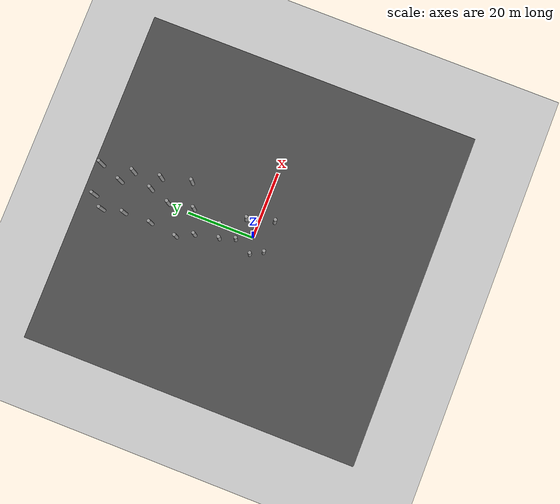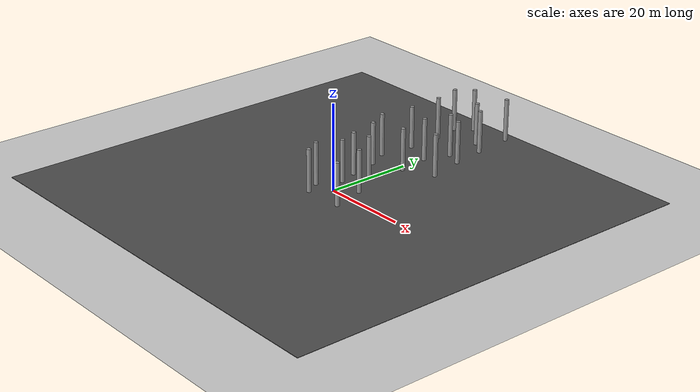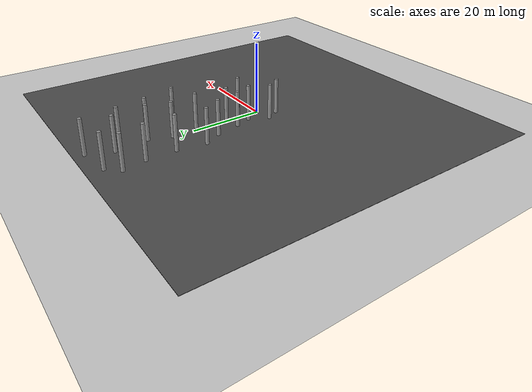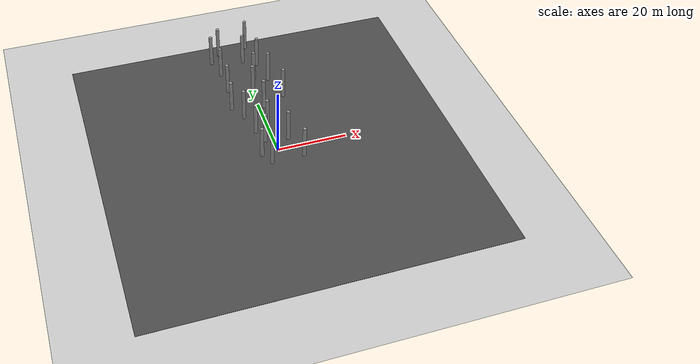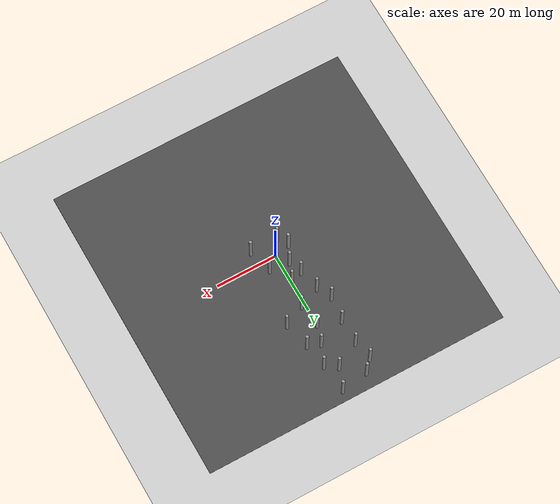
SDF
<sdf version="1.6">
 <world name="default">
  <model name="ground_plane">
   <static>1</static>
   <link name="link">
    <collision name="collision">
     <geometry><plane><normal>0 0 1</normal><size>100 100</size></plane></geometry>
     <surface><friction><ode><mu>100</mu><mu2>50</mu2></ode></friction></surface>
    </collision>
    <visual name="visual">
     <cast_shadows>0</cast_shadows>
     <geometry><plane><normal>0 0 1</normal><size>100 100</size></plane></geometry>
     <material>
      <script><uri>file://media/materials/scripts/gazebo.material</uri><name>Gazebo/Grey</name></script>
     </material>
    </visual>
   </link>
  </model>
  <model name="asphalt_plane">
   <static>1</static>
   <link name="link">
    <collision name="collision"><geometry><box><size>100 100 0.1</size></box></geometry></collision>
    <visual name="visual">
     <cast_shadows>0</cast_shadows>
     <geometry><box><size>100 100 0.1</size></box></geometry>
     <material>
      <script>
       <uri>model://asphalt_plane/materials/scripts</uri>
       <uri>model://asphalt_plane/materials/textures</uri>
       <name>vrc/asphalt</name>
      </script>
     </material>
    </visual>
   </link>
   <pose>0.078502 0.417861 0 0 -0 0</pose>
  </model>
  <model name="forest">
   <link name="link_clone_0">
    <pose>-4.40219 0.125929 0 0 -0 0</pose>
    <inertial>
     <mass>1000</mass>
     <inertia><ixx>0.145833</ixx><ixy>0</ixy><ixz>0</ixz><iyy>0.145833</iyy><iyz>0</iyz><izz>0.125</izz></inertia>
     <pose>0 0 5 0 -0 0</pose>
    </inertial>
    <visual name="visual">
     <geometry><cylinder><radius>0.5</radius><length>10</length></cylinder></geometry>
     <material>
      <script><name>Gazebo/Grey</name><uri>file://media/materials/scripts/gazebo.material</uri></script>
      <ambient>0.3 0.3 0.3 1</ambient>
      <diffuse>0.7 0.7 0.7 1</diffuse>
      <specular>0.01 0.01 0.01 1</specular>
      <emissive>0 0 0 1</emissive>
      <shader type="vertex"><normal_map>__default__</normal_map></shader>
     </material>
     <pose>0 0 5 0 -0 0</pose>
    </visual>
    <collision name="collision">
     <pose>0 0 5 0 -0 0</pose>
     <geometry><cylinder><radius>0.5</radius><length>10</length></cylinder></geometry>
     <surface>
      <friction>
       <ode><mu>1</mu><mu2>1</mu2><fdir1>0 0 0</fdir1><slip1>0</slip1><slip2>0</slip2></ode>
       <torsional>
        <coefficient>1</coefficient>
        <patch_radius>0</patch_radius>
        <surface_radius>0</surface_radius>
        <use_patch_radius>1</use_patch_radius>
        <ode><slip>0</slip></ode>
       </torsional>
      </friction>
      <bounce><restitution_coefficient>0</restitution_coefficient><threshold>1e+06</threshold></bounce>
      <contact>
       <collide_without_contact>0</collide_without_contact>
       <collide_without_contact_bitmask>1</collide_without_contact_bitmask>
       <collide_bitmask>1</collide_bitmask>
       <ode>
        <soft_cfm>0</soft_cfm>
        <soft_erp>0.2</soft_erp>
        <kp>1e+13</kp>
        <kd>1</kd>
        <max_vel>0.01</max_vel>
        <min_depth>0</min_depth>
       </ode>
       <bullet>
        <split_impulse>1</split_impulse>
        <split_impulse_penetration_threshold>-0.01</split_impulse_penetration_threshold>
        <soft_cfm>0</soft_cfm>
        <soft_erp>0.2</soft_erp>
        <kp>1e+13</kp>
        <kd>1</kd>
       </bullet>
      </contact>
     </surface>
    </collision>
   </link>
   <link name="link_clone_13">
    <pose>-3.35264 9.78406 0 0 -0 0</pose>
    <inertial>
     <mass>1000</mass>
     <inertia><ixx>0.145833</ixx><ixy>0</ixy><ixz>0</ixz><iyy>0.145833</iyy><iyz>0</iyz><izz>0.125</izz></inertia>
     <pose>0 0 5 0 -0 0</pose>
    </inertial>
    <visual name="visual">
     <geometry><cylinder><radius>0.5</radius><length>10</length></cylinder></geometry>
     <material>
      <script><name>Gazebo/Grey</name><uri>file://media/materials/scripts/gazebo.material</uri></script>
      <ambient>0.3 0.3 0.3 1</ambient>
      <diffuse>0.7 0.7 0.7 1</diffuse>
      <specular>0.01 0.01 0.01 1</specular>
      <emissive>0 0 0 1</emissive>
      <shader type="vertex"><normal_map>__default__</normal_map></shader>
     </material>
     <pose>0 0 5 0 -0 0</pose>
    </visual>
    <collision name="collision">
     <pose>0 0 5 0 -0 0</pose>
     <geometry><cylinder><radius>0.5</radius><length>10</length></cylinder></geometry>
     <surface>
      <friction>
       <ode><mu>1</mu><mu2>1</mu2><fdir1>0 0 0</fdir1><slip1>0</slip1><slip2>0</slip2></ode>
       <torsional>
        <coefficient>1</coefficient>
        <patch_radius>0</patch_radius>
        <surface_radius>0</surface_radius>
        <use_patch_radius>1</use_patch_radius>
        <ode><slip>0</slip></ode>
       </torsional>
      </friction>
      <bounce><restitution_coefficient>0</restitution_coefficient><threshold>1e+06</threshold></bounce>
      <contact>
       <collide_without_contact>0</collide_without_contact>
       <collide_without_contact_bitmask>1</collide_without_contact_bitmask>
       <collide_bitmask>1</collide_bitmask>
       <ode>
        <soft_cfm>0</soft_cfm>
        <soft_erp>0.2</soft_erp>
        <kp>1e+13</kp>
        <kd>1</kd>
        <max_vel>0.01</max_vel>
        <min_depth>0</min_depth>
       </ode>
       <bullet>
        <split_impulse>1</split_impulse>
        <split_impulse_penetration_threshold>-0.01</split_impulse_penetration_threshold>
        <soft_cfm>0</soft_cfm>
        <soft_erp>0.2</soft_erp>
        <kp>1e+13</kp>
        <kd>1</kd>
       </bullet>
      </contact>
     </surface>
    </collision>
   </link>
   <link name="link_clone_13_clone">
    <pose>-7.29742 21.3612 0 0 -0 0</pose>
    <inertial>
     <mass>1000</mass>
     <inertia><ixx>0.145833</ixx><ixy>0</ixy><ixz>0</ixz><iyy>0.145833</iyy><iyz>0</iyz><izz>0.125</izz></inertia>
     <pose>0 0 5 0 -0 0</pose>
    </inertial>
    <visual name="visual">
     <geometry><cylinder><radius>0.5</radius><length>10</length></cylinder></geometry>
     <material>
      <script><name>Gazebo/Grey</name><uri>file://media/materials/scripts/gazebo.material</uri></script>
      <ambient>0.3 0.3 0.3 1</ambient>
      <diffuse>0.7 0.7 0.7 1</diffuse>
      <specular>0.01 0.01 0.01 1</specular>
      <emissive>0 0 0 1</emissive>
      <shader type="vertex"><normal_map>__default__</normal_map></shader>
     </material>
     <pose>0 0 5 0 -0 0</pose>
    </visual>
    <collision name="collision">
     <pose>0 0 5 0 -0 0</pose>
     <geometry><cylinder><radius>0.5</radius><length>10</length></cylinder></geometry>
     <surface>
      <friction>
       <ode><mu>1</mu><mu2>1</mu2><fdir1>0 0 0</fdir1><slip1>0</slip1><slip2>0</slip2></ode>
       <torsional>
        <coefficient>1</coefficient>
        <patch_radius>0</patch_radius>
        <surface_radius>0</surface_radius>
        <use_patch_radius>1</use_patch_radius>
        <ode><slip>0</slip></ode>
       </torsional>
      </friction>
      <bounce><restitution_coefficient>0</restitution_coefficient><threshold>1e+06</threshold></bounce>
      <contact>
       <collide_without_contact>0</collide_without_contact>
       <collide_without_contact_bitmask>1</collide_without_contact_bitmask>
       <collide_bitmask>1</collide_bitmask>
       <ode>
        <soft_cfm>0</soft_cfm>
        <soft_erp>0.2</soft_erp>
        <kp>1e+13</kp>
        <kd>1</kd>
        <max_vel>0.01</max_vel>
        <min_depth>0</min_depth>
       </ode>
       <bullet>
        <split_impulse>1</split_impulse>
        <split_impulse_penetration_threshold>-0.01</split_impulse_penetration_threshold>
        <soft_cfm>0</soft_cfm>
        <soft_erp>0.2</soft_erp>
        <kp>1e+13</kp>
        <kd>1</kd>
       </bullet>
      </contact>
     </surface>
    </collision>
   </link>
   <link name="link_clone_13_clone_0">
    <pose>-4.89188 16.6488 0 0 -0 0</pose>
    <inertial>
     <mass>1000</mass>
     <inertia><ixx>0.145833</ixx><ixy>0</ixy><ixz>0</ixz><iyy>0.145833</iyy><iyz>0</iyz><izz>0.125</izz></inertia>
     <pose>0 0 5 0 -0 0</pose>
    </inertial>
    <visual name="visual">
     <geometry><cylinder><radius>0.5</radius><length>10</length></cylinder></geometry>
     <material>
      <script><name>Gazebo/Grey</name><uri>file://media/materials/scripts/gazebo.material</uri></script>
      <ambient>0.3 0.3 0.3 1</ambient>
      <diffuse>0.7 0.7 0.7 1</diffuse>
      <specular>0.01 0.01 0.01 1</specular>
      <emissive>0 0 0 1</emissive>
      <shader type="vertex"><normal_map>__default__</normal_map></shader>
     </material>
     <pose>0 0 5 0 -0 0</pose>
    </visual>
    <collision name="collision">
     <pose>0 0 5 0 -0 0</pose>
     <geometry><cylinder><radius>0.5</radius><length>10</length></cylinder></geometry>
     <surface>
      <friction>
       <ode><mu>1</mu><mu2>1</mu2><fdir1>0 0 0</fdir1><slip1>0</slip1><slip2>0</slip2></ode>
       <torsional>
        <coefficient>1</coefficient>
        <patch_radius>0</patch_radius>
        <surface_radius>0</surface_radius>
        <use_patch_radius>1</use_patch_radius>
        <ode><slip>0</slip></ode>
       </torsional>
      </friction>
      <bounce><restitution_coefficient>0</restitution_coefficient><threshold>1e+06</threshold></bounce>
      <contact>
       <collide_without_contact>0</collide_without_contact>
       <collide_without_contact_bitmask>1</collide_without_contact_bitmask>
       <collide_bitmask>1</collide_bitmask>
       <ode>
        <soft_cfm>0</soft_cfm>
        <soft_erp>0.2</soft_erp>
        <kp>1e+13</kp>
        <kd>1</kd>
        <max_vel>0.01</max_vel>
        <min_depth>0</min_depth>
       </ode>
       <bullet>
        <split_impulse>1</split_impulse>
        <split_impulse_penetration_threshold>-0.01</split_impulse_penetration_threshold>
        <soft_cfm>0</soft_cfm>
        <soft_erp>0.2</soft_erp>
        <kp>1e+13</kp>
        <kd>1</kd>
       </bullet>
      </contact>
     </surface>
    </collision>
   </link>
   <link name="link_clone_13_clone_142">
    <pose>6.72388 -3.19567 -0 0 -0 0</pose>
    <inertial>
     <mass>1000</mass>
     <inertia><ixx>0.145833</ixx><ixy>0</ixy><ixz>0</ixz><iyy>0.145833</iyy><iyz>0</iyz><izz>0.125</izz></inertia>
     <pose>0 0 5 0 -0 0</pose>
    </inertial>
    <visual name="visual">
     <geometry><cylinder><radius>0.5</radius><length>10</length></cylinder></geometry>
     <material>
      <script><name>Gazebo/Grey</name><uri>file://media/materials/scripts/gazebo.material</uri></script>
      <ambient>0.3 0.3 0.3 1</ambient>
      <diffuse>0.7 0.7 0.7 1</diffuse>
      <specular>0.01 0.01 0.01 1</specular>
      <emissive>0 0 0 1</emissive>
      <shader type="vertex"><normal_map>__default__</normal_map></shader>
     </material>
     <pose>0 0 5 0 -0 0</pose>
    </visual>
    <collision name="collision">
     <pose>0 0 5 0 -0 0</pose>
     <geometry><cylinder><radius>0.5</radius><length>10</length></cylinder></geometry>
     <surface>
      <friction>
       <ode><mu>1</mu><mu2>1</mu2><fdir1>0 0 0</fdir1><slip1>0</slip1><slip2>0</slip2></ode>
       <torsional>
        <coefficient>1</coefficient>
        <patch_radius>0</patch_radius>
        <surface_radius>0</surface_radius>
        <use_patch_radius>1</use_patch_radius>
        <ode><slip>0</slip></ode>
       </torsional>
      </friction>
      <bounce><restitution_coefficient>0</restitution_coefficient><threshold>1e+06</threshold></bounce>
      <contact>
       <collide_without_contact>0</collide_without_contact>
       <collide_without_contact_bitmask>1</collide_without_contact_bitmask>
       <collide_bitmask>1</collide_bitmask>
       <ode>
        <soft_cfm>0</soft_cfm>
        <soft_erp>0.2</soft_erp>
        <kp>1e+13</kp>
        <kd>1</kd>
        <max_vel>0.01</max_vel>
        <min_depth>0</min_depth>
       </ode>
       <bullet>
        <split_impulse>1</split_impulse>
        <split_impulse_penetration_threshold>-0.01</split_impulse_penetration_threshold>
        <soft_cfm>0</soft_cfm>
        <soft_erp>0.2</soft_erp>
        <kp>1e+13</kp>
        <kd>1</kd>
       </bullet>
      </contact>
     </surface>
    </collision>
   </link>
   <link name="link_clone_13_clone_144">
    <pose>4.57845 4.62908 -0 0 -0 0</pose>
    <inertial>
     <mass>1000</mass>
     <inertia><ixx>0.145833</ixx><ixy>0</ixy><ixz>0</ixz><iyy>0.145833</iyy><iyz>0</iyz><izz>0.125</izz></inertia>
     <pose>0 0 5 0 -0 0</pose>
    </inertial>
    <visual name="visual">
     <geometry><cylinder><radius>0.5</radius><length>10</length></cylinder></geometry>
     <material>
      <script><name>Gazebo/Grey</name><uri>file://media/materials/scripts/gazebo.material</uri></script>
      <ambient>0.3 0.3 0.3 1</ambient>
      <diffuse>0.7 0.7 0.7 1</diffuse>
      <specular>0.01 0.01 0.01 1</specular>
      <emissive>0 0 0 1</emissive>
      <shader type="vertex"><normal_map>__default__</normal_map></shader>
     </material>
     <pose>0 0 5 0 -0 0</pose>
    </visual>
    <collision name="collision">
     <pose>0 0 5 0 -0 0</pose>
     <geometry><cylinder><radius>0.5</radius><length>10</length></cylinder></geometry>
     <surface>
      <friction>
       <ode><mu>1</mu><mu2>1</mu2><fdir1>0 0 0</fdir1><slip1>0</slip1><slip2>0</slip2></ode>
       <torsional>
        <coefficient>1</coefficient>
        <patch_radius>0</patch_radius>
        <surface_radius>0</surface_radius>
        <use_patch_radius>1</use_patch_radius>
        <ode><slip>0</slip></ode>
       </torsional>
      </friction>
      <bounce><restitution_coefficient>0</restitution_coefficient><threshold>1e+06</threshold></bounce>
      <contact>
       <collide_without_contact>0</collide_without_contact>
       <collide_without_contact_bitmask>1</collide_without_contact_bitmask>
       <collide_bitmask>1</collide_bitmask>
       <ode>
        <soft_cfm>0</soft_cfm>
        <soft_erp>0.2</soft_erp>
        <kp>1e+13</kp>
        <kd>1</kd>
        <max_vel>0.01</max_vel>
        <min_depth>0</min_depth>
       </ode>
       <bullet>
        <split_impulse>1</split_impulse>
        <split_impulse_penetration_threshold>-0.01</split_impulse_penetration_threshold>
        <soft_cfm>0</soft_cfm>
        <soft_erp>0.2</soft_erp>
        <kp>1e+13</kp>
        <kd>1</kd>
       </bullet>
      </contact>
     </surface>
    </collision>
   </link>
   <link name="link_clone_13_clone_146">
    <pose>0.408792 10.9303 0 0 -0 0</pose>
    <inertial>
     <mass>1000</mass>
     <inertia><ixx>0.145833</ixx><ixy>0</ixy><ixz>0</ixz><iyy>0.145833</iyy><iyz>0</iyz><izz>0.125</izz></inertia>
     <pose>0 0 5 0 -0 0</pose>
    </inertial>
    <visual name="visual">
     <geometry><cylinder><radius>0.5</radius><length>10</length></cylinder></geometry>
     <material>
      <script><name>Gazebo/Grey</name><uri>file://media/materials/scripts/gazebo.material</uri></script>
      <ambient>0.3 0.3 0.3 1</ambient>
      <diffuse>0.7 0.7 0.7 1</diffuse>
      <specular>0.01 0.01 0.01 1</specular>
      <emissive>0 0 0 1</emissive>
      <shader type="vertex"><normal_map>__default__</normal_map></shader>
     </material>
     <pose>0 0 5 0 -0 0</pose>
    </visual>
    <collision name="collision">
     <pose>0 0 5 0 -0 0</pose>
     <geometry><cylinder><radius>0.5</radius><length>10</length></cylinder></geometry>
     <surface>
      <friction>
       <ode><mu>1</mu><mu2>1</mu2><fdir1>0 0 0</fdir1><slip1>0</slip1><slip2>0</slip2></ode>
       <torsional>
        <coefficient>1</coefficient>
        <patch_radius>0</patch_radius>
        <surface_radius>0</surface_radius>
        <use_patch_radius>1</use_patch_radius>
        <ode><slip>0</slip></ode>
       </torsional>
      </friction>
      <bounce><restitution_coefficient>0</restitution_coefficient><threshold>1e+06</threshold></bounce>
      <contact>
       <collide_without_contact>0</collide_without_contact>
       <collide_without_contact_bitmask>1</collide_without_contact_bitmask>
       <collide_bitmask>1</collide_bitmask>
       <ode>
        <soft_cfm>0</soft_cfm>
        <soft_erp>0.2</soft_erp>
        <kp>1e+13</kp>
        <kd>1</kd>
        <max_vel>0.01</max_vel>
        <min_depth>0</min_depth>
       </ode>
       <bullet>
        <split_impulse>1</split_impulse>
        <split_impulse_penetration_threshold>-0.01</split_impulse_penetration_threshold>
        <soft_cfm>0</soft_cfm>
        <soft_erp>0.2</soft_erp>
        <kp>1e+13</kp>
        <kd>1</kd>
       </bullet>
      </contact>
     </surface>
    </collision>
   </link>
   <link name="link_clone_13_clone_153">
    <pose>1.86725 19.4572 0 0 -0 0</pose>
    <inertial>
     <mass>1000</mass>
     <inertia><ixx>0.145833</ixx><ixy>0</ixy><ixz>0</ixz><iyy>0.145833</iyy><iyz>0</iyz><izz>0.125</izz></inertia>
     <pose>0 0 5 0 -0 0</pose>
    </inertial>
    <visual name="visual">
     <geometry><cylinder><radius>0.5</radius><length>10</length></cylinder></geometry>
     <material>
      <script><name>Gazebo/Grey</name><uri>file://media/materials/scripts/gazebo.material</uri></script>
      <ambient>0.3 0.3 0.3 1</ambient>
      <diffuse>0.7 0.7 0.7 1</diffuse>
      <specular>0.01 0.01 0.01 1</specular>
      <emissive>0 0 0 1</emissive>
      <shader type="vertex"><normal_map>__default__</normal_map></shader>
     </material>
     <pose>0 0 5 0 -0 0</pose>
    </visual>
    <collision name="collision">
     <pose>0 0 5 0 -0 0</pose>
     <geometry><cylinder><radius>0.5</radius><length>10</length></cylinder></geometry>
     <surface>
      <friction>
       <ode><mu>1</mu><mu2>1</mu2><fdir1>0 0 0</fdir1><slip1>0</slip1><slip2>0</slip2></ode>
       <torsional>
        <coefficient>1</coefficient>
        <patch_radius>0</patch_radius>
        <surface_radius>0</surface_radius>
        <use_patch_radius>1</use_patch_radius>
        <ode><slip>0</slip></ode>
       </torsional>
      </friction>
      <bounce><restitution_coefficient>0</restitution_coefficient><threshold>1e+06</threshold></bounce>
      <contact>
       <collide_without_contact>0</collide_without_contact>
       <collide_without_contact_bitmask>1</collide_without_contact_bitmask>
       <collide_bitmask>1</collide_bitmask>
       <ode>
        <soft_cfm>0</soft_cfm>
        <soft_erp>0.2</soft_erp>
        <kp>1e+13</kp>
        <kd>1</kd>
        <max_vel>0.01</max_vel>
        <min_depth>0</min_depth>
       </ode>
       <bullet>
        <split_impulse>1</split_impulse>
        <split_impulse_penetration_threshold>-0.01</split_impulse_penetration_threshold>
        <soft_cfm>0</soft_cfm>
        <soft_erp>0.2</soft_erp>
        <kp>1e+13</kp>
        <kd>1</kd>
       </bullet>
      </contact>
     </surface>
    </collision>
   </link>
   <link name="link_clone_13_clone_154">
    <pose>0.723883 26.8043 0 0 -0 0</pose>
    <inertial>
     <mass>1000</mass>
     <inertia><ixx>0.145833</ixx><ixy>0</ixy><ixz>0</ixz><iyy>0.145833</iyy><iyz>0</iyz><izz>0.125</izz></inertia>
     <pose>0 0 5 0 -0 0</pose>
    </inertial>
    <visual name="visual">
     <geometry><cylinder><radius>0.5</radius><length>10</length></cylinder></geometry>
     <material>
      <script><name>Gazebo/Grey</name><uri>file://media/materials/scripts/gazebo.material</uri></script>
      <ambient>0.3 0.3 0.3 1</ambient>
      <diffuse>0.7 0.7 0.7 1</diffuse>
      <specular>0.01 0.01 0.01 1</specular>
      <emissive>0 0 0 1</emissive>
      <shader type="vertex"><normal_map>__default__</normal_map></shader>
     </material>
     <pose>0 0 5 0 -0 0</pose>
    </visual>
    <collision name="collision">
     <pose>0 0 5 0 -0 0</pose>
     <geometry><cylinder><radius>0.5</radius><length>10</length></cylinder></geometry>
     <surface>
      <friction>
       <ode><mu>1</mu><mu2>1</mu2><fdir1>0 0 0</fdir1><slip1>0</slip1><slip2>0</slip2></ode>
       <torsional>
        <coefficient>1</coefficient>
        <patch_radius>0</patch_radius>
        <surface_radius>0</surface_radius>
        <use_patch_radius>1</use_patch_radius>
        <ode><slip>0</slip></ode>
       </torsional>
      </friction>
      <bounce><restitution_coefficient>0</restitution_coefficient><threshold>1e+06</threshold></bounce>
      <contact>
       <collide_without_contact>0</collide_without_contact>
       <collide_without_contact_bitmask>1</collide_without_contact_bitmask>
       <collide_bitmask>1</collide_bitmask>
       <ode>
        <soft_cfm>0</soft_cfm>
        <soft_erp>0.2</soft_erp>
        <kp>1e+13</kp>
        <kd>1</kd>
        <max_vel>0.01</max_vel>
        <min_depth>0</min_depth>
       </ode>
       <bullet>
        <split_impulse>1</split_impulse>
        <split_impulse_penetration_threshold>-0.01</split_impulse_penetration_threshold>
        <soft_cfm>0</soft_cfm>
        <soft_erp>0.2</soft_erp>
        <kp>1e+13</kp>
        <kd>1</kd>
       </bullet>
      </contact>
     </surface>
    </collision>
   </link>
   <link name="link_clone_13_clone_155">
    <pose>2.72388 32.8043 0 0 -0 0</pose>
    <inertial>
     <mass>1000</mass>
     <inertia><ixx>0.145833</ixx><ixy>0</ixy><ixz>0</ixz><iyy>0.145833</iyy><iyz>0</iyz><izz>0.125</izz></inertia>
     <pose>0 0 5 0 -0 0</pose>
    </inertial>
    <visual name="visual">
     <geometry><cylinder><radius>0.5</radius><length>10</length></cylinder></geometry>
     <material>
      <script><name>Gazebo/Grey</name><uri>file://media/materials/scripts/gazebo.material</uri></script>
      <ambient>0.3 0.3 0.3 1</ambient>
      <diffuse>0.7 0.7 0.7 1</diffuse>
      <specular>0.01 0.01 0.01 1</specular>
      <emissive>0 0 0 1</emissive>
      <shader type="vertex"><normal_map>__default__</normal_map></shader>
     </material>
     <pose>0 0 5 0 -0 0</pose>
    </visual>
    <collision name="collision">
     <pose>0 0 5 0 -0 0</pose>
     <geometry><cylinder><radius>0.5</radius><length>10</length></cylinder></geometry>
     <surface>
      <friction>
       <ode><mu>1</mu><mu2>1</mu2><fdir1>0 0 0</fdir1><slip1>0</slip1><slip2>0</slip2></ode>
       <torsional>
        <coefficient>1</coefficient>
        <patch_radius>0</patch_radius>
        <surface_radius>0</surface_radius>
        <use_patch_radius>1</use_patch_radius>
        <ode><slip>0</slip></ode>
       </torsional>
      </friction>
      <bounce><restitution_coefficient>0</restitution_coefficient><threshold>1e+06</threshold></bounce>
      <contact>
       <collide_without_contact>0</collide_without_contact>
       <collide_without_contact_bitmask>1</collide_without_contact_bitmask>
       <collide_bitmask>1</collide_bitmask>
       <ode>
        <soft_cfm>0</soft_cfm>
        <soft_erp>0.2</soft_erp>
        <kp>1e+13</kp>
        <kd>1</kd>
        <max_vel>0.01</max_vel>
        <min_depth>0</min_depth>
       </ode>
       <bullet>
        <split_impulse>1</split_impulse>
        <split_impulse_penetration_threshold>-0.01</split_impulse_penetration_threshold>
        <soft_cfm>0</soft_cfm>
        <soft_erp>0.2</soft_erp>
        <kp>1e+13</kp>
        <kd>1</kd>
       </bullet>
      </contact>
     </surface>
    </collision>
   </link>
   <link name="link_clone_13_clone_156">
    <pose>1.72388 41.8043 0 0 -0 0</pose>
    <inertial>
     <mass>1000</mass>
     <inertia><ixx>0.145833</ixx><ixy>0</ixy><ixz>0</ixz><iyy>0.145833</iyy><iyz>0</iyz><izz>0.125</izz></inertia>
     <pose>0 0 5 0 -0 0</pose>
    </inertial>
    <visual name="visual">
     <geometry><cylinder><radius>0.5</radius><length>10</length></cylinder></geometry>
     <material>
      <script><name>Gazebo/Grey</name><uri>file://media/materials/scripts/gazebo.material</uri></script>
      <ambient>0.3 0.3 0.3 1</ambient>
      <diffuse>0.7 0.7 0.7 1</diffuse>
      <specular>0.01 0.01 0.01 1</specular>
      <emissive>0 0 0 1</emissive>
      <shader type="vertex"><normal_map>__default__</normal_map></shader>
     </material>
     <pose>0 0 5 0 -0 0</pose>
    </visual>
    <collision name="collision">
     <pose>0 0 5 0 -0 0</pose>
     <geometry><cylinder><radius>0.5</radius><length>10</length></cylinder></geometry>
     <surface>
      <friction>
       <ode><mu>1</mu><mu2>1</mu2><fdir1>0 0 0</fdir1><slip1>0</slip1><slip2>0</slip2></ode>
       <torsional>
        <coefficient>1</coefficient>
        <patch_radius>0</patch_radius>
        <surface_radius>0</surface_radius>
        <use_patch_radius>1</use_patch_radius>
        <ode><slip>0</slip></ode>
       </torsional>
      </friction>
      <bounce><restitution_coefficient>0</restitution_coefficient><threshold>1e+06</threshold></bounce>
      <contact>
       <collide_without_contact>0</collide_without_contact>
       <collide_without_contact_bitmask>1</collide_without_contact_bitmask>
       <collide_bitmask>1</collide_bitmask>
       <ode>
        <soft_cfm>0</soft_cfm>
        <soft_erp>0.2</soft_erp>
        <kp>1e+13</kp>
        <kd>1</kd>
        <max_vel>0.01</max_vel>
        <min_depth>0</min_depth>
       </ode>
       <bullet>
        <split_impulse>1</split_impulse>
        <split_impulse_penetration_threshold>-0.01</split_impulse_penetration_threshold>
        <soft_cfm>0</soft_cfm>
        <soft_erp>0.2</soft_erp>
        <kp>1e+13</kp>
        <kd>1</kd>
       </bullet>
      </contact>
     </surface>
    </collision>
   </link>
   <link name="link_clone_13_clone_157">
    <pose>4.35055 48.5492 0 0 -0 0</pose>
    <inertial>
     <mass>1000</mass>
     <inertia><ixx>0.145833</ixx><ixy>0</ixy><ixz>0</ixz><iyy>0.145833</iyy><iyz>0</iyz><izz>0.125</izz></inertia>
     <pose>0 0 5 0 -0 0</pose>
    </inertial>
    <visual name="visual">
     <geometry><cylinder><radius>0.5</radius><length>10</length></cylinder></geometry>
     <material>
      <script><name>Gazebo/Grey</name><uri>file://media/materials/scripts/gazebo.material</uri></script>
      <ambient>0.3 0.3 0.3 1</ambient>
      <diffuse>0.7 0.7 0.7 1</diffuse>
      <specular>0.01 0.01 0.01 1</specular>
      <emissive>0 0 0 1</emissive>
      <shader type="vertex"><normal_map>__default__</normal_map></shader>
     </material>
     <pose>0 0 5 0 -0 0</pose>
    </visual>
    <collision name="collision">
     <pose>0 0 5 0 -0 0</pose>
     <geometry><cylinder><radius>0.5</radius><length>10</length></cylinder></geometry>
     <surface>
      <friction>
       <ode><mu>1</mu><mu2>1</mu2><fdir1>0 0 0</fdir1><slip1>0</slip1><slip2>0</slip2></ode>
       <torsional>
        <coefficient>1</coefficient>
        <patch_radius>0</patch_radius>
        <surface_radius>0</surface_radius>
        <use_patch_radius>1</use_patch_radius>
        <ode><slip>0</slip></ode>
       </torsional>
      </friction>
      <bounce><restitution_coefficient>0</restitution_coefficient><threshold>1e+06</threshold></bounce>
      <contact>
       <collide_without_contact>0</collide_without_contact>
       <collide_without_contact_bitmask>1</collide_without_contact_bitmask>
       <collide_bitmask>1</collide_bitmask>
       <ode>
        <soft_cfm>0</soft_cfm>
        <soft_erp>0.2</soft_erp>
        <kp>1e+13</kp>
        <kd>1</kd>
        <max_vel>0.01</max_vel>
        <min_depth>0</min_depth>
       </ode>
       <bullet>
        <split_impulse>1</split_impulse>
        <split_impulse_penetration_threshold>-0.01</split_impulse_penetration_threshold>
        <soft_cfm>0</soft_cfm>
        <soft_erp>0.2</soft_erp>
        <kp>1e+13</kp>
        <kd>1</kd>
       </bullet>
      </contact>
     </surface>
    </collision>
   </link>
   <link name="link_clone_13_clone_174">
    <pose>8.7316 22.7177 0 0 -0 0</pose>
    <inertial>
     <mass>1000</mass>
     <inertia><ixx>0.145833</ixx><ixy>0</ixy><ixz>0</ixz><iyy>0.145833</iyy><iyz>0</iyz><izz>0.125</izz></inertia>
     <pose>0 0 5 0 -0 0</pose>
    </inertial>
    <visual name="visual">
     <geometry><cylinder><radius>0.5</radius><length>10</length></cylinder></geometry>
     <material>
      <script><name>Gazebo/Grey</name><uri>file://media/materials/scripts/gazebo.material</uri></script>
      <ambient>0.3 0.3 0.3 1</ambient>
      <diffuse>0.7 0.7 0.7 1</diffuse>
      <specular>0.01 0.01 0.01 1</specular>
      <emissive>0 0 0 1</emissive>
      <shader type="vertex"><normal_map>__default__</normal_map></shader>
     </material>
     <pose>0 0 5 0 -0 0</pose>
    </visual>
    <collision name="collision">
     <pose>0 0 5 0 -0 0</pose>
     <geometry><cylinder><radius>0.5</radius><length>10</length></cylinder></geometry>
     <surface>
      <friction>
       <ode><mu>1</mu><mu2>1</mu2><fdir1>0 0 0</fdir1><slip1>0</slip1><slip2>0</slip2></ode>
       <torsional>
        <coefficient>1</coefficient>
        <patch_radius>0</patch_radius>
        <surface_radius>0</surface_radius>
        <use_patch_radius>1</use_patch_radius>
        <ode><slip>0</slip></ode>
       </torsional>
      </friction>
      <bounce><restitution_coefficient>0</restitution_coefficient><threshold>1e+06</threshold></bounce>
      <contact>
       <collide_without_contact>0</collide_without_contact>
       <collide_without_contact_bitmask>1</collide_without_contact_bitmask>
       <collide_bitmask>1</collide_bitmask>
       <ode>
        <soft_cfm>0</soft_cfm>
        <soft_erp>0.2</soft_erp>
        <kp>1e+13</kp>
        <kd>1</kd>
        <max_vel>0.01</max_vel>
        <min_depth>0</min_depth>
       </ode>
       <bullet>
        <split_impulse>1</split_impulse>
        <split_impulse_penetration_threshold>-0.01</split_impulse_penetration_threshold>
        <soft_cfm>0</soft_cfm>
        <soft_erp>0.2</soft_erp>
        <kp>1e+13</kp>
        <kd>1</kd>
       </bullet>
      </contact>
     </surface>
    </collision>
   </link>
   <link name="link_clone_13_clone_175">
    <pose>6.71953 31.2834 0 0 -0 0</pose>
    <inertial>
     <mass>1000</mass>
     <inertia><ixx>0.145833</ixx><ixy>0</ixy><ixz>0</ixz><iyy>0.145833</iyy><iyz>0</iyz><izz>0.125</izz></inertia>
     <pose>0 0 5 0 -0 0</pose>
    </inertial>
    <visual name="visual">
     <geometry><cylinder><radius>0.5</radius><length>10</length></cylinder></geometry>
     <material>
      <script><name>Gazebo/Grey</name><uri>file://media/materials/scripts/gazebo.material</uri></script>
      <ambient>0.3 0.3 0.3 1</ambient>
      <diffuse>0.7 0.7 0.7 1</diffuse>
      <specular>0.01 0.01 0.01 1</specular>
      <emissive>0 0 0 1</emissive>
      <shader type="vertex"><normal_map>__default__</normal_map></shader>
     </material>
     <pose>0 0 5 0 -0 0</pose>
    </visual>
    <collision name="collision">
     <pose>0 0 5 0 -0 0</pose>
     <geometry><cylinder><radius>0.5</radius><length>10</length></cylinder></geometry>
     <surface>
      <friction>
       <ode><mu>1</mu><mu2>1</mu2><fdir1>0 0 0</fdir1><slip1>0</slip1><slip2>0</slip2></ode>
       <torsional>
        <coefficient>1</coefficient>
        <patch_radius>0</patch_radius>
        <surface_radius>0</surface_radius>
        <use_patch_radius>1</use_patch_radius>
        <ode><slip>0</slip></ode>
       </torsional>
      </friction>
      <bounce><restitution_coefficient>0</restitution_coefficient><threshold>1e+06</threshold></bounce>
      <contact>
       <collide_without_contact>0</collide_without_contact>
       <collide_without_contact_bitmask>1</collide_without_contact_bitmask>
       <collide_bitmask>1</collide_bitmask>
       <ode>
        <soft_cfm>0</soft_cfm>
        <soft_erp>0.2</soft_erp>
        <kp>1e+13</kp>
        <kd>1</kd>
        <max_vel>0.01</max_vel>
        <min_depth>0</min_depth>
       </ode>
       <bullet>
        <split_impulse>1</split_impulse>
        <split_impulse_penetration_threshold>-0.01</split_impulse_penetration_threshold>
        <soft_cfm>0</soft_cfm>
        <soft_erp>0.2</soft_erp>
        <kp>1e+13</kp>
        <kd>1</kd>
       </bullet>
      </contact>
     </surface>
    </collision>
   </link>
   <link name="link_clone_13_clone_176">
    <pose>5.47909 39.2148 0 0 -0 0</pose>
    <inertial>
     <mass>1000</mass>
     <inertia><ixx>0.145833</ixx><ixy>0</ixy><ixz>0</ixz><iyy>0.145833</iyy><iyz>0</iyz><izz>0.125</izz></inertia>
     <pose>0 0 5 0 -0 0</pose>
    </inertial>
    <visual name="visual">
     <geometry><cylinder><radius>0.5</radius><length>10</length></cylinder></geometry>
     <material>
      <script><name>Gazebo/Grey</name><uri>file://media/materials/scripts/gazebo.material</uri></script>
      <ambient>0.3 0.3 0.3 1</ambient>
      <diffuse>0.7 0.7 0.7 1</diffuse>
      <specular>0.01 0.01 0.01 1</specular>
      <emissive>0 0 0 1</emissive>
      <shader type="vertex"><normal_map>__default__</normal_map></shader>
     </material>
     <pose>0 0 5 0 -0 0</pose>
    </visual>
    <collision name="collision">
     <pose>0 0 5 0 -0 0</pose>
     <geometry><cylinder><radius>0.5</radius><length>10</length></cylinder></geometry>
     <surface>
      <friction>
       <ode><mu>1</mu><mu2>1</mu2><fdir1>0 0 0</fdir1><slip1>0</slip1><slip2>0</slip2></ode>
       <torsional>
        <coefficient>1</coefficient>
        <patch_radius>0</patch_radius>
        <surface_radius>0</surface_radius>
        <use_patch_radius>1</use_patch_radius>
        <ode><slip>0</slip></ode>
       </torsional>
      </friction>
      <bounce><restitution_coefficient>0</restitution_coefficient><threshold>1e+06</threshold></bounce>
      <contact>
       <collide_without_contact>0</collide_without_contact>
       <collide_without_contact_bitmask>1</collide_without_contact_bitmask>
       <collide_bitmask>1</collide_bitmask>
       <ode>
        <soft_cfm>0</soft_cfm>
        <soft_erp>0.2</soft_erp>
        <kp>1e+13</kp>
        <kd>1</kd>
        <max_vel>0.01</max_vel>
        <min_depth>0</min_depth>
       </ode>
       <bullet>
        <split_impulse>1</split_impulse>
        <split_impulse_penetration_threshold>-0.01</split_impulse_penetration_threshold>
        <soft_cfm>0</soft_cfm>
        <soft_erp>0.2</soft_erp>
        <kp>1e+13</kp>
        <kd>1</kd>
       </bullet>
      </contact>
     </surface>
    </collision>
   </link>
   <link name="link_clone_13_clone_201">
    <pose>-4.56534 47.1359 0 0 -0 0</pose>
    <inertial>
     <mass>1000</mass>
     <inertia><ixx>0.145833</ixx><ixy>0</ixy><ixz>0</ixz><iyy>0.145833</iyy><iyz>0</iyz><izz>0.125</izz></inertia>
     <pose>0 0 5 0 -0 0</pose>
    </inertial>
    <visual name="visual">
     <geometry><cylinder><radius>0.5</radius><length>10</length></cylinder></geometry>
     <material>
      <script><name>Gazebo/Grey</name><uri>file://media/materials/scripts/gazebo.material</uri></script>
      <ambient>0.3 0.3 0.3 1</ambient>
      <diffuse>0.7 0.7 0.7 1</diffuse>
      <specular>0.01 0.01 0.01 1</specular>
      <emissive>0 0 0 1</emissive>
      <shader type="vertex"><normal_map>__default__</normal_map></shader>
     </material>
     <pose>0 0 5 0 -0 0</pose>
    </visual>
    <collision name="collision">
     <pose>0 0 5 0 -0 0</pose>
     <geometry><cylinder><radius>0.5</radius><length>10</length></cylinder></geometry>
     <surface>
      <friction>
       <ode><mu>1</mu><mu2>1</mu2><fdir1>0 0 0</fdir1><slip1>0</slip1><slip2>0</slip2></ode>
       <torsional>
        <coefficient>1</coefficient>
        <patch_radius>0</patch_radius>
        <surface_radius>0</surface_radius>
        <use_patch_radius>1</use_patch_radius>
        <ode><slip>0</slip></ode>
       </torsional>
      </friction>
      <bounce><restitution_coefficient>0</restitution_coefficient><threshold>1e+06</threshold></bounce>
      <contact>
       <collide_without_contact>0</collide_without_contact>
       <collide_without_contact_bitmask>1</collide_without_contact_bitmask>
       <collide_bitmask>1</collide_bitmask>
       <ode>
        <soft_cfm>0</soft_cfm>
        <soft_erp>0.2</soft_erp>
        <kp>1e+13</kp>
        <kd>1</kd>
        <max_vel>0.01</max_vel>
        <min_depth>0</min_depth>
       </ode>
       <bullet>
        <split_impulse>1</split_impulse>
        <split_impulse_penetration_threshold>-0.01</split_impulse_penetration_threshold>
        <soft_cfm>0</soft_cfm>
        <soft_erp>0.2</soft_erp>
        <kp>1e+13</kp>
        <kd>1</kd>
       </bullet>
      </contact>
     </surface>
    </collision>
   </link>
   <link name="link_clone_13_clone_3">
    <pose>-6.27612 29.3512 0 0 -0 0</pose>
    <inertial>
     <mass>1000</mass>
     <inertia><ixx>0.145833</ixx><ixy>0</ixy><ixz>0</ixz><iyy>0.145833</iyy><iyz>0</iyz><izz>0.125</izz></inertia>
     <pose>0 0 5 0 -0 0</pose>
    </inertial>
    <visual name="visual">
     <geometry><cylinder><radius>0.5</radius><length>10</length></cylinder></geometry>
     <material>
      <script><name>Gazebo/Grey</name><uri>file://media/materials/scripts/gazebo.material</uri></script>
      <ambient>0.3 0.3 0.3 1</ambient>
      <diffuse>0.7 0.7 0.7 1</diffuse>
      <specular>0.01 0.01 0.01 1</specular>
      <emissive>0 0 0 1</emissive>
      <shader type="vertex"><normal_map>__default__</normal_map></shader>
     </material>
     <pose>0 0 5 0 -0 0</pose>
    </visual>
    <collision name="collision">
     <pose>0 0 5 0 -0 0</pose>
     <geometry><cylinder><radius>0.5</radius><length>10</length></cylinder></geometry>
     <surface>
      <friction>
       <ode><mu>1</mu><mu2>1</mu2><fdir1>0 0 0</fdir1><slip1>0</slip1><slip2>0</slip2></ode>
       <torsional>
        <coefficient>1</coefficient>
        <patch_radius>0</patch_radius>
        <surface_radius>0</surface_radius>
        <use_patch_radius>1</use_patch_radius>
        <ode><slip>0</slip></ode>
       </torsional>
      </friction>
      <bounce><restitution_coefficient>0</restitution_coefficient><threshold>1e+06</threshold></bounce>
      <contact>
       <collide_without_contact>0</collide_without_contact>
       <collide_without_contact_bitmask>1</collide_without_contact_bitmask>
       <collide_bitmask>1</collide_bitmask>
       <ode>
        <soft_cfm>0</soft_cfm>
        <soft_erp>0.2</soft_erp>
        <kp>1e+13</kp>
        <kd>1</kd>
        <max_vel>0.01</max_vel>
        <min_depth>0</min_depth>
       </ode>
       <bullet>
        <split_impulse>1</split_impulse>
        <split_impulse_penetration_threshold>-0.01</split_impulse_penetration_threshold>
        <soft_cfm>0</soft_cfm>
        <soft_erp>0.2</soft_erp>
        <kp>1e+13</kp>
        <kd>1</kd>
       </bullet>
      </contact>
     </surface>
    </collision>
   </link>
   <link name="link_clone_13_clone_6">
    <pose>-6.30964 37.446 0 0 -0 0</pose>
    <inertial>
     <mass>1000</mass>
     <inertia><ixx>0.145833</ixx><ixy>0</ixy><ixz>0</ixz><iyy>0.145833</iyy><iyz>0</iyz><izz>0.125</izz></inertia>
     <pose>0 0 5 0 -0 0</pose>
    </inertial>
    <visual name="visual">
     <geometry><cylinder><radius>0.5</radius><length>10</length></cylinder></geometry>
     <material>
      <script><name>Gazebo/Grey</name><uri>file://media/materials/scripts/gazebo.material</uri></script>
      <ambient>0.3 0.3 0.3 1</ambient>
      <diffuse>0.7 0.7 0.7 1</diffuse>
      <specular>0.01 0.01 0.01 1</specular>
      <emissive>0 0 0 1</emissive>
      <shader type="vertex"><normal_map>__default__</normal_map></shader>
     </material>
     <pose>0 0 5 0 -0 0</pose>
    </visual>
    <collision name="collision">
     <pose>0 0 5 0 -0 0</pose>
     <geometry><cylinder><radius>0.5</radius><length>10</length></cylinder></geometry>
     <surface>
      <friction>
       <ode><mu>1</mu><mu2>1</mu2><fdir1>0 0 0</fdir1><slip1>0</slip1><slip2>0</slip2></ode>
       <torsional>
        <coefficient>1</coefficient>
        <patch_radius>0</patch_radius>
        <surface_radius>0</surface_radius>
        <use_patch_radius>1</use_patch_radius>
        <ode><slip>0</slip></ode>
       </torsional>
      </friction>
      <bounce><restitution_coefficient>0</restitution_coefficient><threshold>1e+06</threshold></bounce>
      <contact>
       <collide_without_contact>0</collide_without_contact>
       <collide_without_contact_bitmask>1</collide_without_contact_bitmask>
       <collide_bitmask>1</collide_bitmask>
       <ode>
        <soft_cfm>0</soft_cfm>
        <soft_erp>0.2</soft_erp>
        <kp>1e+13</kp>
        <kd>1</kd>
        <max_vel>0.01</max_vel>
        <min_depth>0</min_depth>
       </ode>
       <bullet>
        <split_impulse>1</split_impulse>
        <split_impulse_penetration_threshold>-0.01</split_impulse_penetration_threshold>
        <soft_cfm>0</soft_cfm>
        <soft_erp>0.2</soft_erp>
        <kp>1e+13</kp>
        <kd>1</kd>
       </bullet>
      </contact>
     </surface>
    </collision>
   </link>
   <link name="link_clone_13_clone_8">
    <pose>-7.59895 43.7381 0 0 -0 0</pose>
    <inertial>
     <mass>1000</mass>
     <inertia><ixx>0.145833</ixx><ixy>0</ixy><ixz>0</ixz><iyy>0.145833</iyy><iyz>0</iyz><izz>0.125</izz></inertia>
     <pose>0 0 5 0 -0 0</pose>
    </inertial>
    <visual name="visual">
     <geometry><cylinder><radius>0.5</radius><length>10</length></cylinder></geometry>
     <material>
      <script><name>Gazebo/Grey</name><uri>file://media/materials/scripts/gazebo.material</uri></script>
      <ambient>0.3 0.3 0.3 1</ambient>
      <diffuse>0.7 0.7 0.7 1</diffuse>
      <specular>0.01 0.01 0.01 1</specular>
      <emissive>0 0 0 1</emissive>
      <shader type="vertex"><normal_map>__default__</normal_map></shader>
     </material>
     <pose>0 0 5 0 -0 0</pose>
    </visual>
    <collision name="collision">
     <pose>0 0 5 0 -0 0</pose>
     <geometry><cylinder><radius>0.5</radius><length>10</length></cylinder></geometry>
     <surface>
      <friction>
       <ode><mu>1</mu><mu2>1</mu2><fdir1>0 0 0</fdir1><slip1>0</slip1><slip2>0</slip2></ode>
       <torsional>
        <coefficient>1</coefficient>
        <patch_radius>0</patch_radius>
        <surface_radius>0</surface_radius>
        <use_patch_radius>1</use_patch_radius>
        <ode><slip>0</slip></ode>
       </torsional>
      </friction>
      <bounce><restitution_coefficient>0</restitution_coefficient><threshold>1e+06</threshold></bounce>
      <contact>
       <collide_without_contact>0</collide_without_contact>
       <collide_without_contact_bitmask>1</collide_without_contact_bitmask>
       <collide_bitmask>1</collide_bitmask>
       <ode>
        <soft_cfm>0</soft_cfm>
        <soft_erp>0.2</soft_erp>
        <kp>1e+13</kp>
        <kd>1</kd>
        <max_vel>0.01</max_vel>
        <min_depth>0</min_depth>
       </ode>
       <bullet>
        <split_impulse>1</split_impulse>
        <split_impulse_penetration_threshold>-0.01</split_impulse_penetration_threshold>
        <soft_cfm>0</soft_cfm>
        <soft_erp>0.2</soft_erp>
        <kp>1e+13</kp>
        <kd>1</kd>
       </bullet>
      </contact>
     </surface>
    </collision>
   </link>
   <link name="link_clone_2">
    <pose>-1.86322 5.35424 0 0 -0 0</pose>
    <inertial>
     <mass>1000</mass>
     <inertia><ixx>0.145833</ixx><ixy>0</ixy><ixz>0</ixz><iyy>0.145833</iyy><iyz>0</iyz><izz>0.125</izz></inertia>
     <pose>0 0 5 0 -0 0</pose>
    </inertial>
    <visual name="visual">
     <geometry><cylinder><radius>0.5</radius><length>10</length></cylinder></geometry>
     <material>
      <script><name>Gazebo/Grey</name><uri>file://media/materials/scripts/gazebo.material</uri></script>
      <ambient>0.3 0.3 0.3 1</ambient>
      <diffuse>0.7 0.7 0.7 1</diffuse>
      <specular>0.01 0.01 0.01 1</specular>
      <emissive>0 0 0 1</emissive>
      <shader type="vertex"><normal_map>__default__</normal_map></shader>
     </material>
     <pose>0 0 5 0 -0 0</pose>
    </visual>
    <collision name="collision">
     <pose>0 0 5 0 -0 0</pose>
     <geometry><cylinder><radius>0.5</radius><length>10</length></cylinder></geometry>
     <surface>
      <friction>
       <ode><mu>1</mu><mu2>1</mu2><fdir1>0 0 0</fdir1><slip1>0</slip1><slip2>0</slip2></ode>
       <torsional>
        <coefficient>1</coefficient>
        <patch_radius>0</patch_radius>
        <surface_radius>0</surface_radius>
        <use_patch_radius>1</use_patch_radius>
        <ode><slip>0</slip></ode>
       </torsional>
      </friction>
      <bounce><restitution_coefficient>0</restitution_coefficient><threshold>1e+06</threshold></bounce>
      <contact>
       <collide_without_contact>0</collide_without_contact>
       <collide_without_contact_bitmask>1</collide_without_contact_bitmask>
       <collide_bitmask>1</collide_bitmask>
       <ode>
        <soft_cfm>0</soft_cfm>
        <soft_erp>0.2</soft_erp>
        <kp>1e+13</kp>
        <kd>1</kd>
        <max_vel>0.01</max_vel>
        <min_depth>0</min_depth>
       </ode>
       <bullet>
        <split_impulse>1</split_impulse>
        <split_impulse_penetration_threshold>-0.01</split_impulse_penetration_threshold>
        <soft_cfm>0</soft_cfm>
        <soft_erp>0.2</soft_erp>
        <kp>1e+13</kp>
        <kd>1</kd>
       </bullet>
      </contact>
     </surface>
    </collision>
   </link>
   <link name="link_clone_3">
    <pose>-2.4897 -3.37015 0 0 -0 0</pose>
    <inertial>
     <mass>1000</mass>
     <inertia><ixx>0.145833</ixx><ixy>0</ixy><ixz>0</ixz><iyy>0.145833</iyy><iyz>0</iyz><izz>0.125</izz></inertia>
     <pose>0 0 5 0 -0 0</pose>
    </inertial>
    <visual name="visual">
     <geometry><cylinder><radius>0.5</radius><length>10</length></cylinder></geometry>
     <material>
      <script><name>Gazebo/Grey</name><uri>file://media/materials/scripts/gazebo.material</uri></script>
      <ambient>0.3 0.3 0.3 1</ambient>
      <diffuse>0.7 0.7 0.7 1</diffuse>
      <specular>0.01 0.01 0.01 1</specular>
      <emissive>0 0 0 1</emissive>
      <shader type="vertex"><normal_map>__default__</normal_map></shader>
     </material>
     <pose>0 0 5 0 -0 0</pose>
    </visual>
    <collision name="collision">
     <pose>0 0 5 0 -0 0</pose>
     <geometry><cylinder><radius>0.5</radius><length>10</length></cylinder></geometry>
     <surface>
      <friction>
       <ode><mu>1</mu><mu2>1</mu2><fdir1>0 0 0</fdir1><slip1>0</slip1><slip2>0</slip2></ode>
       <torsional>
        <coefficient>1</coefficient>
        <patch_radius>0</patch_radius>
        <surface_radius>0</surface_radius>
        <use_patch_radius>1</use_patch_radius>
        <ode><slip>0</slip></ode>
       </torsional>
      </friction>
      <bounce><restitution_coefficient>0</restitution_coefficient><threshold>1e+06</threshold></bounce>
      <contact>
       <collide_without_contact>0</collide_without_contact>
       <collide_without_contact_bitmask>1</collide_without_contact_bitmask>
       <collide_bitmask>1</collide_bitmask>
       <ode>
        <soft_cfm>0</soft_cfm>
        <soft_erp>0.2</soft_erp>
        <kp>1e+13</kp>
        <kd>1</kd>
        <max_vel>0.01</max_vel>
        <min_depth>0</min_depth>
       </ode>
       <bullet>
        <split_impulse>1</split_impulse>
        <split_impulse_penetration_threshold>-0.01</split_impulse_penetration_threshold>
        <soft_cfm>0</soft_cfm>
        <soft_erp>0.2</soft_erp>
        <kp>1e+13</kp>
        <kd>1</kd>
       </bullet>
      </contact>
     </surface>
    </collision>
   </link>
   <static>1</static>
   <pose>-0.461627 -0.993358 0 0 -0 0</pose>
  </model>
 </world>
</sdf>
